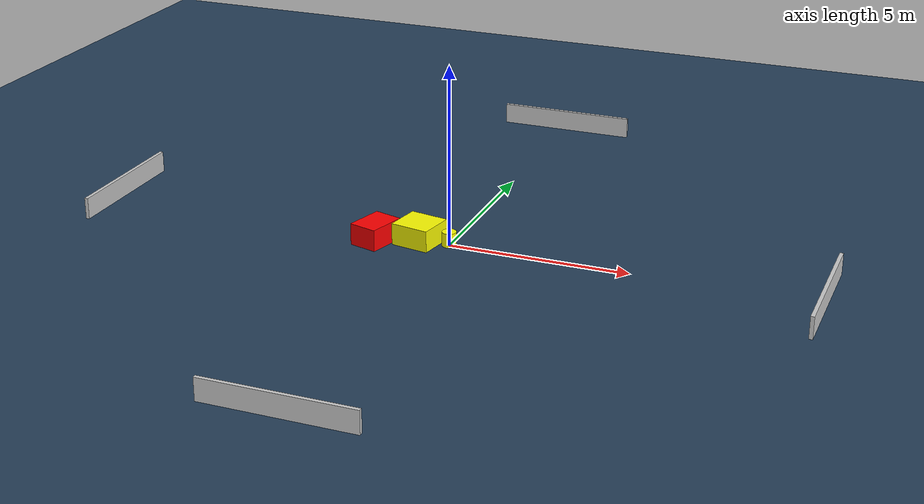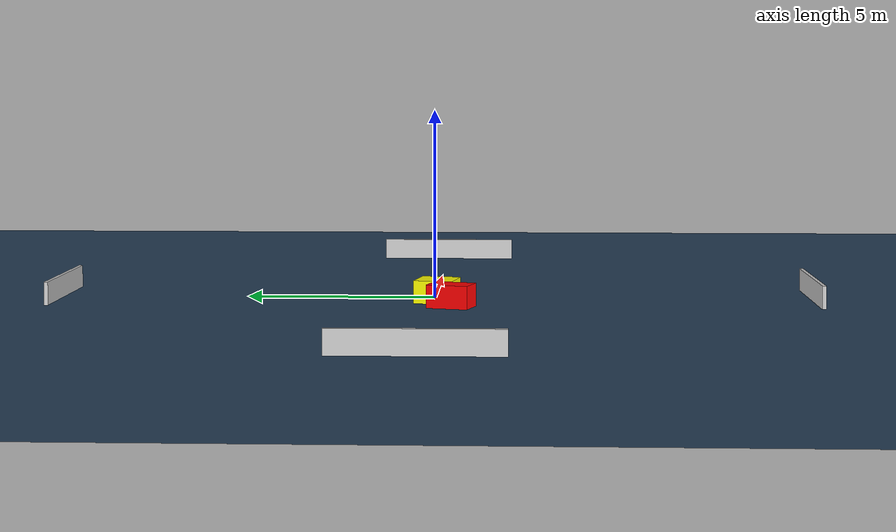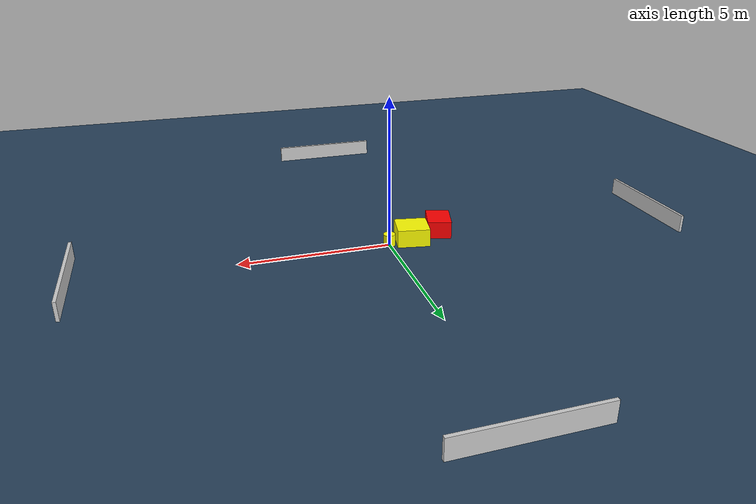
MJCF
<?xml version="1.0" ?>
<mujoco model="generated_environment">
  <option timestep="0.01" integrator="RK4" cone="elliptic"/>
  <default>
    <geom density="1"/>
  </default>
  <asset>
    <texture builtin="gradient" height="3072" name="skybox" rgb1="0.3 0.5 0.7" rgb2="0 0 0" type="skybox" width="512"/>
    <texture builtin="checker" height="300" name="groundplane" rgb1="0.2 0.3 0.4" rgb2="0.1 0.2 0.3" type="2d" width="300"/>
    <material name="groundplane" reflectance="0.2" texrepeat="5 5" texture="groundplane"/>
  </asset>
  <worldbody>
    <light dir="0 0 -1" directional="true" pos="0 0 1.5"/>
    <geom condim="3" friction="0.5 0.005 0.001" material="groundplane" name="floor" pos="0 0 0" size="0 0 0.05" type="plane"/>
    <body name="walls">
      <geom name="wall_1" condim="4" pos="-10.0 0.0 0.3" rgba="0.800000011920929 0.800000011920929 0.800000011920929 1.0" size="0.05 2.0 0.3" type="box"/>
      <geom name="wall_2" condim="4" pos="10.0 0.0 0.3" rgba="0.800000011920929 0.800000011920929 0.800000011920929 1.0" size="0.05 2.0 0.3" type="box"/>
      <geom name="wall_3" condim="4" pos="0.0 -10.0 0.3" rgba="0.800000011920929 0.800000011920929 0.800000011920929 1.0" size="2.0 0.05 0.3" type="box"/>
      <geom name="wall_4" condim="4" pos="0.0 10.0 0.3" rgba="0.800000011920929 0.800000011920929 0.800000011920929 1.0" size="2.0 0.05 0.3" type="box"/>
    </body>
    <body name="robot">
      <joint name="joint_x" type="slide" pos="0 0 0" axis="1 0 0"/>
      <joint name="joint_y" type="slide" pos="0 0 0" axis="0 1 0"/>
      <geom name="robot" type="cylinder" pos="0.0 0.0 0.2" size="0.2 0.2 0.0" mass="5.0" friction="1.0 0.005 0.0001" condim="4" rgba="1.0 1.0 0.0 1.0"/>
    </body>
    <body name="obstacle_1_movable">
      <geom name="obstacle_1_movable" condim="4" pos="-0.8258501686367928 -0.09097189960450859 0.3" euler="0 0 169.82111933981636" friction="0.0 0.005 0.001" rgba="1.0 1.0 0.0 1.0" size="0.5425535032144315 0.5133774760534002 0.3" type="box" mass="0.1"/>
      <joint type="free"/>
    </body>
    <body name="obstacle_2_static">
      <geom name="obstacle_2_static" condim="4" pos="-1.9265956321774942 -0.49332737992011455 0.3" euler="0 0 164.20146941116275" friction="0.0 0.005 0.001" rgba="1.0 0.0 0.0 1.0" size="0.40529289116883327 0.5490634948296148 0.3" type="box"/>
    </body>
  </worldbody>
  <actuator>
    <motor name="actuator_x" joint="joint_x" gear="1" ctrlrange="-1 1"/>
    <motor name="actuator_y" joint="joint_y" gear="1" ctrlrange="-1 1"/>
  </actuator>
</mujoco>
